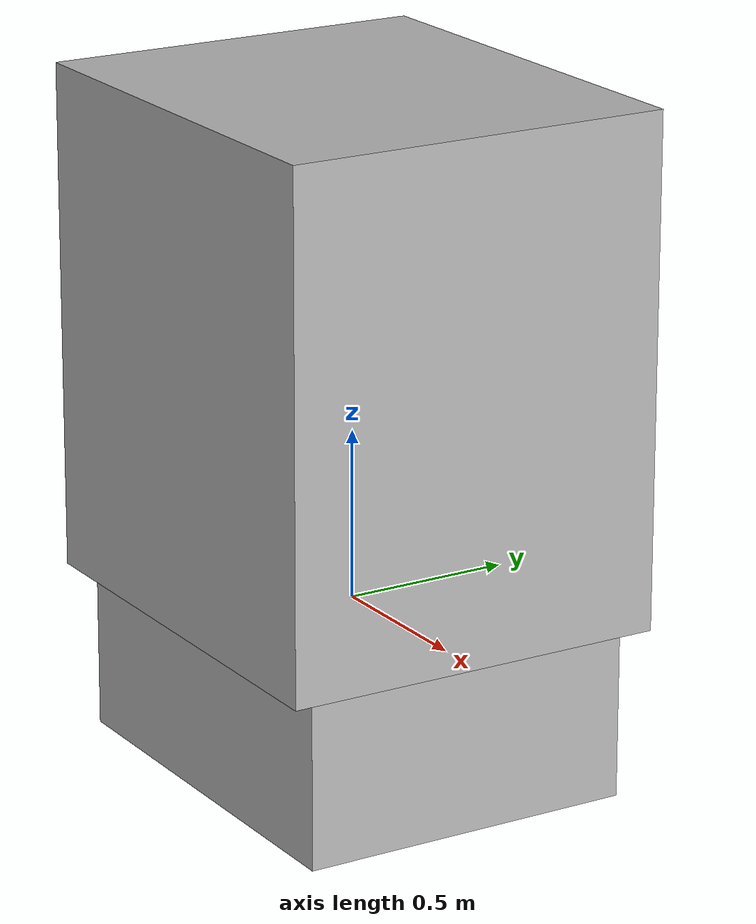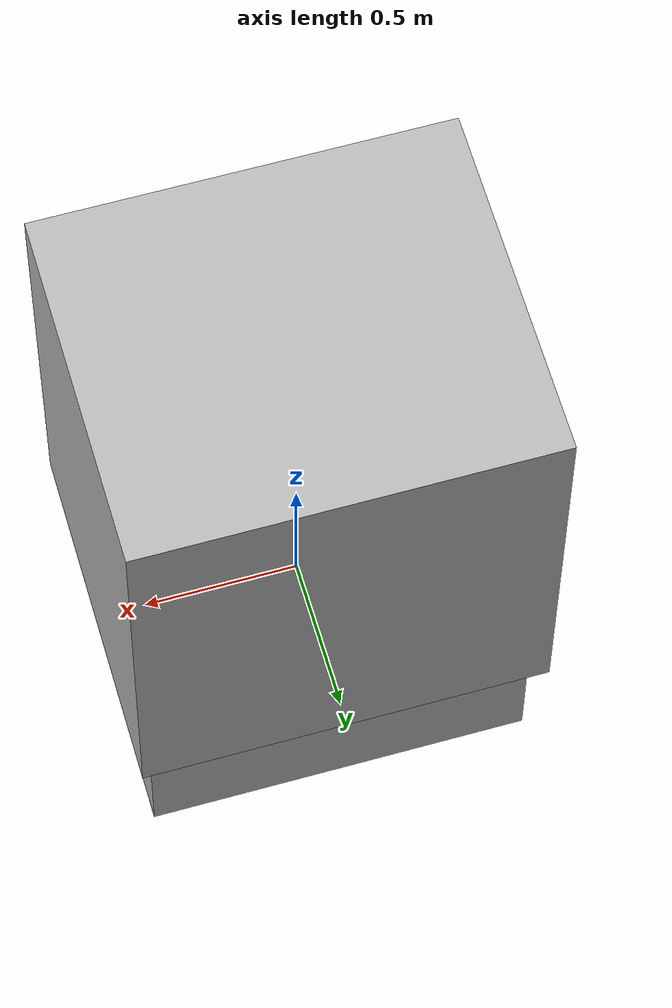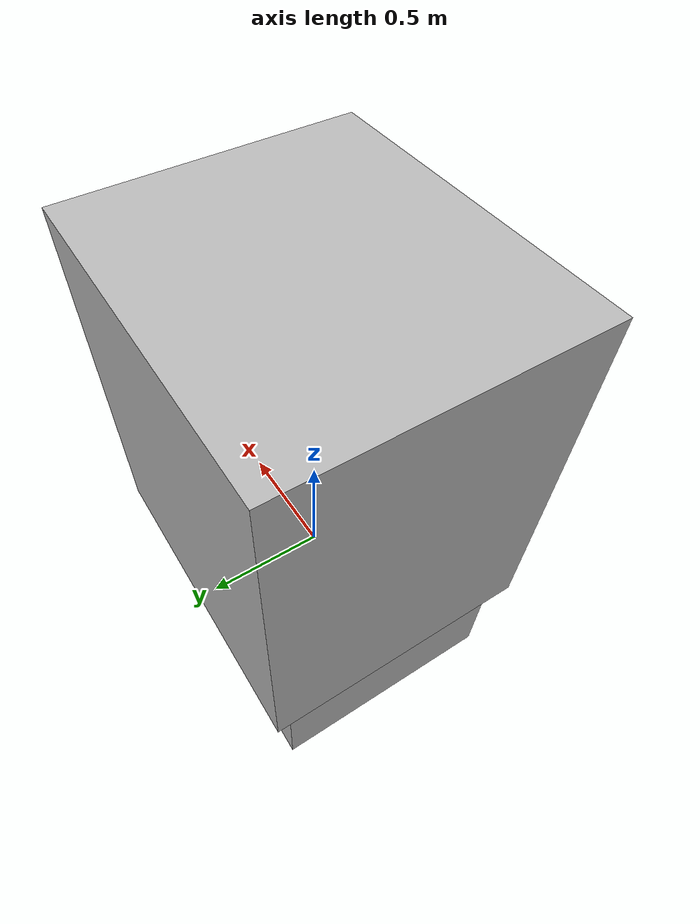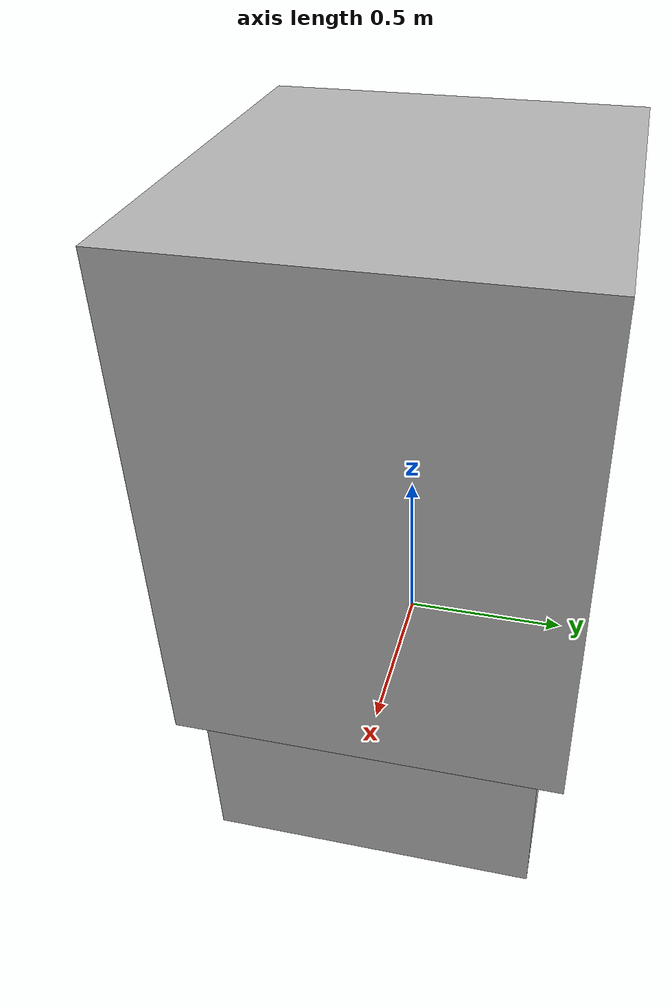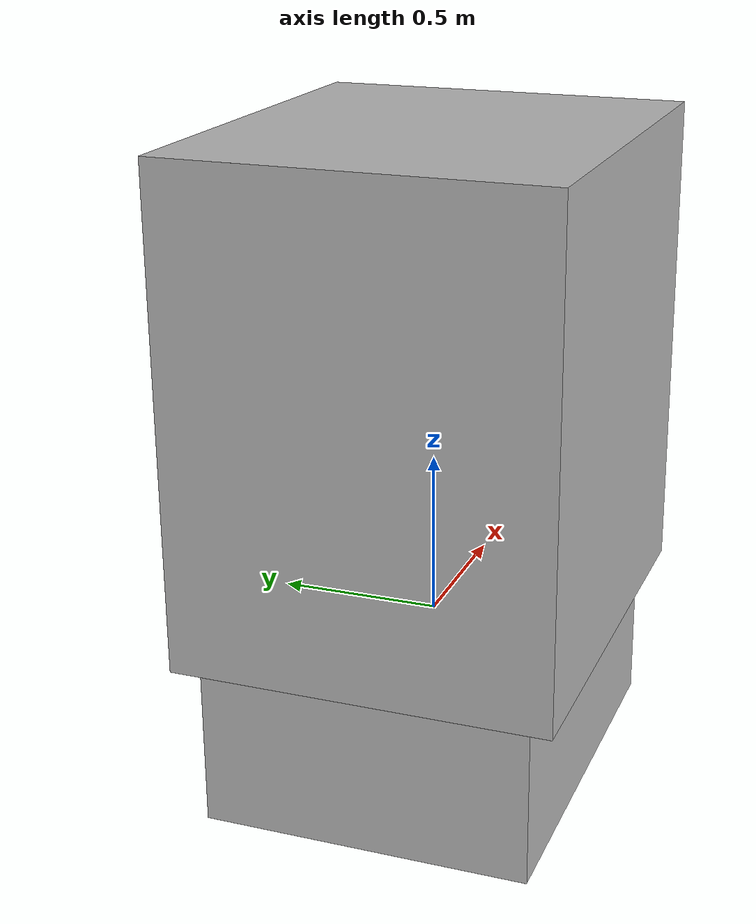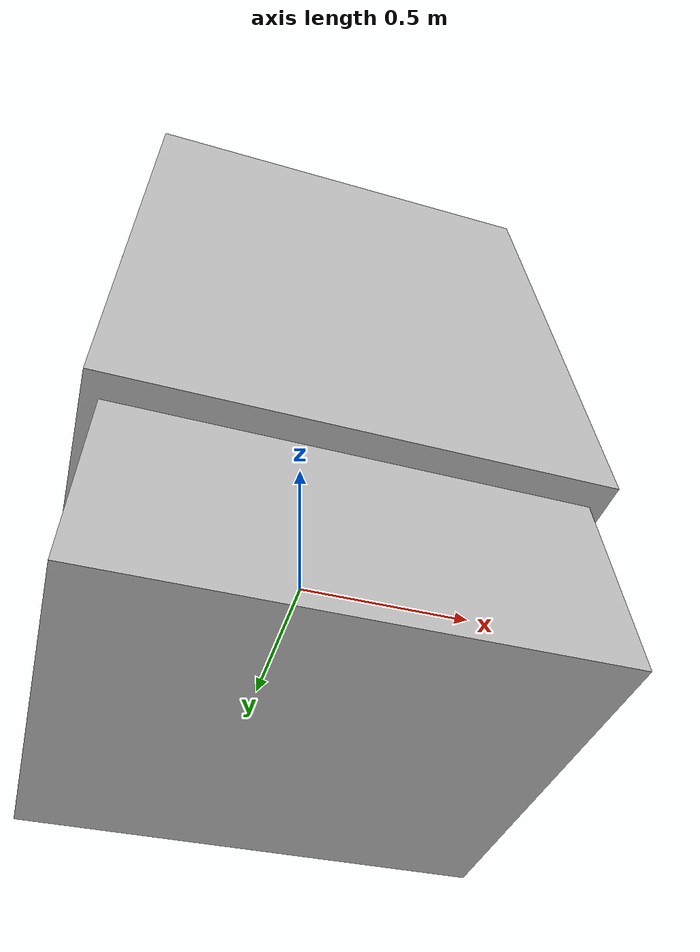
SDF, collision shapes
<?xml version="1.0"?>
<sdf version="1.6">
  <model name="lander">
    <link name="base_link">
      <inertial>
        <!-- Center of mass -->
        <pose>0 0 -0.982494 0 0 0</pose>

        <mass>1209.175</mass>
        <inertia>
          <ixx>205.227945746</ixx>
          <ixy>0</ixy>
          <ixz>0</ixz>
          <iyy>412.254844006</iyy>
          <iyz>0</iyz>
          <izz>383.659583213</izz>
        </inertia>
      </inertial>

      <visual name="chassis_visual">
        <geometry>
            <mesh>
            <uri>meshes/inkfish-lander.dae</uri>
            </mesh>
        </geometry>
      </visual>

      <collision name="collision_top">
        <pose>0 0 1.5 0 0 0</pose>
        <geometry>
          <box>
            <size>1.325 1.1503 0.000001</size>
          </box>
        </geometry>
      </collision>

      <collision name="collision_rear">
        <pose>0.6625 0 0.75 0 0 0</pose>
        <geometry>
          <box>
            <size>0.000001 1.1503 1.5</size>
          </box>
        </geometry>
      </collision>

      <collision name="collision_front">
        <pose>-0.6625 0 0.75 0 0 0</pose>
        <geometry>
          <box>
            <size>0.000001 1.1503 1.5</size>
          </box>
        </geometry>
      </collision>

      <collision name="collision_starboard">
        <pose>0 0.57515 0.75 0 0 0</pose>
        <geometry>
          <box>
            <size>1.325 0.000001 1.5</size>
          </box>
        </geometry>
      </collision>

      <collision name="collision_port">
        <pose>0 -0.57515 0.75 0 0 0</pose>
        <geometry>
          <box>
            <size>1.325 0.000001 1.5</size>
          </box>
        </geometry>
      </collision>

      <collision name="collision_bottom">
        <pose>0 0 0 0 0 0</pose>
        <geometry>
          <box>
            <size>1.325 1.1503 0.000001</size>
          </box>
        </geometry>
      </collision>

      <!-- Center of buoyancy -->
      <collision name="buoyancy">
        <pose>0 0 0 0 0 0</pose>
        <geometry>
          <box>
            <size>1.24 1 1</size>
          </box>
        </geometry>
      </collision>
    </link>

    <!-- Hydrodynamics -->
    <plugin
      filename="gz-sim-hydrodynamics-system"
      name="gz::sim::systems::Hydrodynamics">
      <link_name>base_link</link_name>
      <xDotU>-4.876161</xDotU>
      <yDotV>-126.324739</yDotV>
      <zDotW>-126.324739</zDotW>
      <kDotP>0</kDotP>
      <mDotQ>-33.46</mDotQ>
      <nDotR>-33.46</nDotR>
      <xUabsU>-6.2282</xUabsU>
      <xU>0</xU>
      <yVabsV>-601.27</yVabsV>
      <yV>0</yV>
      <zWabsW>-601.27</zWabsW>
      <zW>0</zW>
      <kPabsP>-0.1916</kPabsP>
      <kP>0</kP>
      <mQabsQ>-632.698957</mQabsQ>
      <mQ>0</mQ>
      <nRabsR>-632.698957</nRabsR>
      <nR>0</nR>
    </plugin>

    <!-- Drop weight -->
    <link name="drop_weight">
      <pose>0 0 0.25 0 0 0</pose>
      <visual name="drop_weight_visual">
        <geometry>
          <box>
            <size>0.5 0.5 0.5</size>
          </box>
        </geometry>
      </visual>
      <collision name="drop_weight_collision">
        <geometry>
          <box>
            <size>0.5 0.5 0.000001</size>
          </box>
        </geometry>
      </collision>
      <inertial>
        <mass>120</mass>
      </inertial>
    </link>

    <plugin
      filename="gz-sim-detachable-joint-system"
      name="gz::sim::systems::DetachableJoint">
      <parent_link>base_link</parent_link>
      <child_model>__model__</child_model>
      <child_link>drop_weight</child_link>
      <topic>/model/lander/drop_weight</topic>
    </plugin>
  </model>
</sdf>
